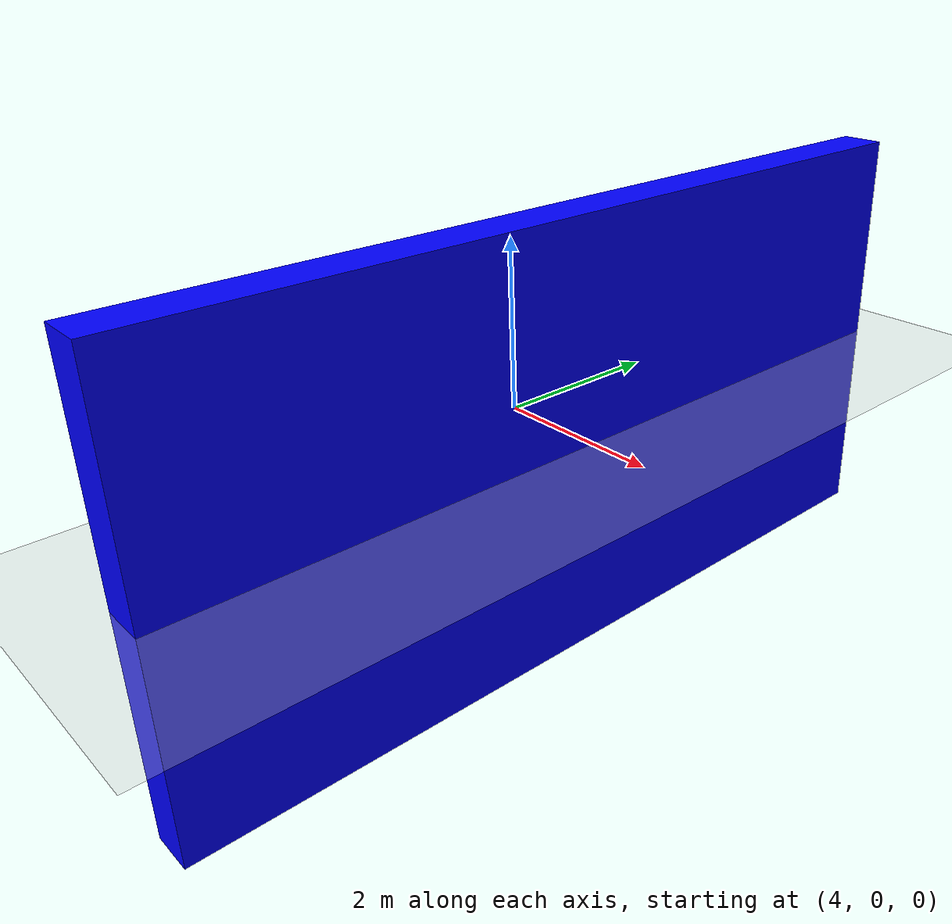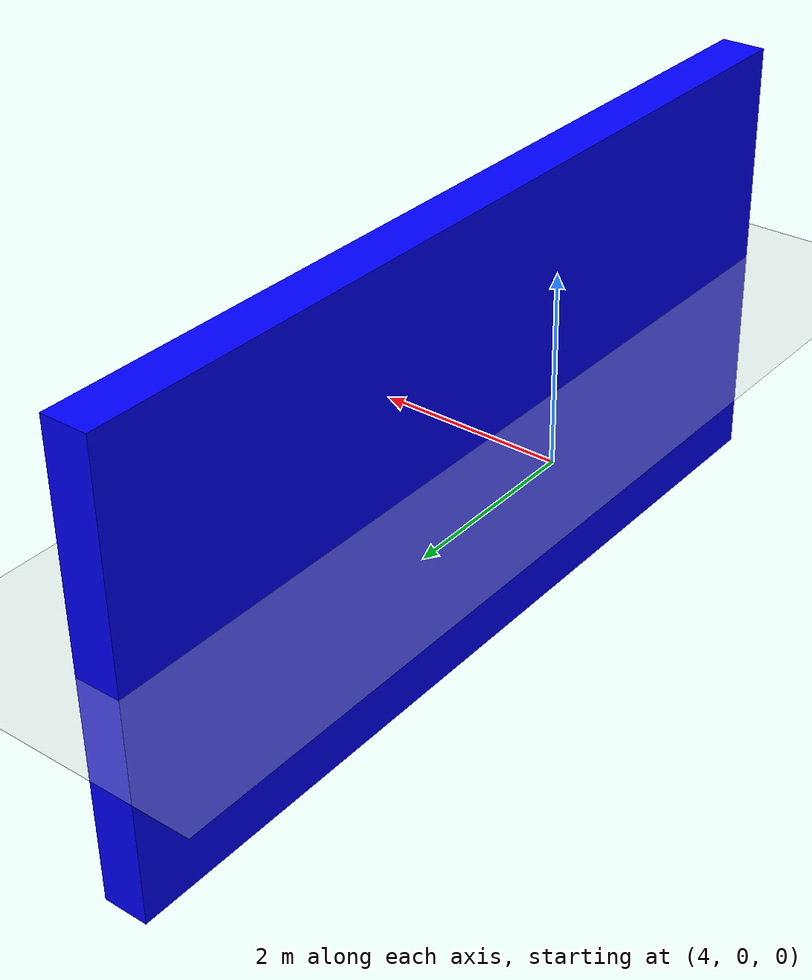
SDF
<?xml version="1.0" ?>
<sdf version="1.8">
    <world name="world_demo">
        <!-- Configuración de la física del mundo -->
        <physics type="lms">
            <!-- Tamaño máximo del paso de simulación -->
            <max_step_size>0.001</max_step_size>
            <!-- Factor de tiempo real (1 significa tiempo real) -->
            <real_time_factor>1</real_time_factor>
        </physics>

        <!-- Plugin de física de Ignition Gazebo -->
        <plugin
            filename="libignition-gazebo-physics-system.so"
            name="ignition::gazebo::systems::Physics">
        </plugin>

        <!-- Plugin para comandos de usuario en Ignition Gazebo -->
        <plugin
            filename="libignition-gazebo-user-commands-system.so"
            name="ignition::gazebo::systems::UserCommands">
        </plugin>

        <!-- Plugin para la transmisión de la escena en Ignition Gazebo -->
        <plugin
            filename="libignition-gazebo-scene-broadcaster-system.so"
            name="ignition::gazebo::systems::SceneBroadcaster">
        </plugin>

        <!-- Plugin para los sensores IMU -->
        <plugin
            filename="libignition-gazebo-imu-system.so"
            name="ignition::gazebo::systems::Imu">
        </plugin>

        <plugin
            filename="gz-sim-contact-system"
            name="gz::sim::systems::Contact">
        </plugin>

        <!-- Configuración de la interfaz gráfica -->
        <gui fullscreen="0">
            <!-- Plugin para la vista 3D de la simulación -->
            <plugin filename="GzScene3D" name="3D View">
                <ignition-gui>
                    <!-- Título de la ventana de la vista 3D -->
                    <title>3D View</title>
                    <!-- Propiedad para ocultar la barra de título -->
                    <property type="bool" key="showTitleBar">false</property>
                    <!-- Estado de la ventana (docked significa acoplada) -->
                    <property type="string" key="state">docked</property>
                </ignition-gui>

                <!-- Configuración del motor gráfico y la escena -->
                <!-- Motor gráfico utilizado (ogre2) -->
                <engine>ogre2</engine>
                <scene>
                    <!-- Luz ambiental de la escena -->
                    <ambient_light>0.1 0.1 0.1 1</ambient_light>
                    <!-- Color de fondo de la escena -->
                    <background_color>0.7 0.7 0.7 1</background_color>
                </scene>
            </plugin>

            <!-- Plugin para el control del mundo -->
            <plugin filename="WorldControl" name="World Control">
                <ignition-gui>
                    <!-- Título de la ventana de control del mundo -->
                    <title>World Control</title>
                    <!-- Propiedad para ocultar la barra de título -->
                    <property type="bool" key="showTitleBar">false</property>
                    <!-- Propiedad para desactivar el redimensionamiento -->
                    <property type="bool" key="reziable">false</property>
                    <!-- Altura de la ventana -->
                    <property type="double" key="height">72</property>
                    <!-- Ancho de la ventana -->
                    <property type="double" key="width">121</property>
                    <!-- Profundidad de la ventana (z-index) -->
                    <property type="double" key="z">1</property>
                    <!-- Estado de la ventana (floating significa flotante) -->
                    <property type="string" key="state">floating</property>
                    <!-- Anclaje de la ventana al objetivo "3D View" -->
                    <anchor target="3D View">
                        <!-- Línea de anclaje a la derecha -->
                        <line own="left" target="left"/>
                        <!-- Línea de anclaje en la parte inferior -->
                        <line own="bottom" target="bottom"/>
                    </anchor>
                </ignition-gui>

                <!-- Botón de play/pause -->
                <play_pause>true</play_pause>
                <!-- Botón de paso a paso -->
                <step>true</step>
                <!-- Iniciar en pausa -->
                <start_paused>true</start_paused>
                <!-- Servicio de control del mundo -->
                <service>/world/world_demo/control</service>
                <!-- Tópico de estadísticas del mundo -->
                <stats_topic>/world/world_demo/stats</stats_topic>
            </plugin>

            <!-- Plugin para las estadísticas del mundo -->
            <plugin filename="WorldStats" name="World Stats">
                <ignition-gui>
                    <!-- Título de la ventana de estadísticas del mundo -->
                    <title>World Stats</title>
                    <!-- Propiedad para ocultar la barra de título -->
                    <property type="bool" key="showTitleBar">false</property>
                    <!-- Propiedad para desactivar el redimensionamiento -->
                    <property type="bool" key="resizable">false</property>
                    <!-- Altura de la ventana -->
                    <property type="double" key="height">110</property>
                    <!-- Ancho de la ventana -->
                    <property type="double" key="width">290</property>
                    <!-- Profundidad de la ventana (z-index) -->
                    <property type="double" key="z">1</property>
                    <!-- Estado de la ventana (floating significa flotante) -->
                    <property type="string" key="state">floating</property>
                    <!-- Anclaje de la ventana al objetivo "3D View" -->
                    <anchor target="3D View">
                        <!-- Línea de anclaje a la derecha -->
                        <line own="right" target="right"/>
                        <!-- Línea de anclaje en la parte inferior -->
                        <line own="bottom" target="bottom"/>
                    </anchor>
                </ignition-gui>

                <!-- Mostrar tiempo de simulación -->
                <sim_time>true</sim_time>
                <!-- Mostrar tiempo real -->
                <real_time>true</real_time>
                <!-- Mostrar factor de tiempo real -->
                <real_time_factor>true</real_time_factor>
                <!-- Mostrar número de iteraciones -->
                <interations>true</interations>
                <!-- Tópico de estadísticas del mundo -->
                <topic>/world/world_demo/stats</topic>
            </plugin>

            <!-- Plugin para el árbol de entidades -->
            <plugin filename="EntityTree" name="Entity tree">
            </plugin>
        </gui>

        <!-- Luz direccional llamada "sun" -->
        <light type="directional" name="sun">
            <!-- Habilitar sombras proyectadas -->
            <cast_shadows>true</cast_shadows>
            <!-- Posición de la luz -->
            <pose>0 0 10 0 0 0</pose>
            <!-- Color difuso de la luz -->
            <diffuse>0.8 0.8 0.8 1</diffuse>
            <!-- Color especular de la luz -->
            <specular>0.2 0.2 0.2 1</specular>
            <attenuation>
                <!-- Rango de atenuación -->
                <range>1000</range>
                <!-- Atenuación constante -->
                <constant>0.9</constant>
                <!-- Atenuación lineal -->
                <linear>0.01</linear>
                <!-- Atenuación cuadrática -->
                <quadratic>0.001</quadratic>
            </attenuation>
            <!-- Dirección de la luz -->
            <direction>-0.5 0.1 -0.9</direction>
        </light>

        <!-- Agregar un suelo (ground plane) -->
        <model name="ground_plane">
            <static>true</static>
            <link name="link">
                <collision name="collision">
                    <geometry>
                        <plane>
                            <normal>0 0 1</normal>
                            <size>100 100</size>
                        </plane>
                    </geometry>
                </collision>
                <visual name="visual">
                    <geometry>
                        <plane>
                            <normal>0 0 1</normal>
                            <size>100 100</size>
                        </plane>
                    </geometry>
                    <material>
                        <ambient>0.8 0.8 0.8 1</ambient>
                        <diffuse>0.8 0.8 0.8 1</diffuse>
                        <specular>0.8 0.8 0.8 1</specular>
                    </material>
                </visual>
            </link>
        </model>

        <model name='wall'>
            <static>true</static>
            <pose>5 0 0 0 0 0</pose><!--pose relative to the world-->
            <link name='box'>
                <visual name='visual'>
                    <geometry>
                        <box>
                            <!-- Grosor, Ancho, alto -->
                            <size>0.5 10.0 5.0</size>
                        </box>
                    </geometry>
                    <!--let's add color to our link-->
                    <material>
                        <ambient>0.0 0.0 1.0 1</ambient>
                        <diffuse>0.0 0.0 1.0 1</diffuse>
                        <specular>0.0 0.0 1.0 1</specular>
                    </material>
                </visual>
                <collision name='collision'>
                    <geometry>
                        <box>
                            <size>0.5 10.0 5.0</size>
                        </box>
                    </geometry>
                </collision>
                <sensor name='sensor_contact' type='contact'>
                    <contact>
                        <collision>collision</collision>
                    </contact>
                </sensor>
            </link>
            <plugin
                filename="gz-sim-touchplugin-system"
                name="gz::sim::systems::TouchPlugin">
            <target>vehicle_blue</target>
            <namespace>wall</namespace>
            <time>0.001</time>
            <enabled>true</enabled>
        </plugin>

        </model>

        <!-- Incluir el modelo del Parrot Bebop 2 -->
        <!-- Incluir el contenido del archivo basic.world -->

        <plugin filename="gz-sim-triggered-publisher-system"
                name="gz::sim::systems::TriggeredPublisher">
            <input type="gz.msgs.Boolean" topic="/wall/touched">
                <match>data: true</match>
            </input>
            <output type="gz.msgs.Twist" topic="/cmd_vel">
                linear: {x: 0.0}, angular: {z: 0.0}
            </output>
        </plugin>
    </world>
</sdf>
